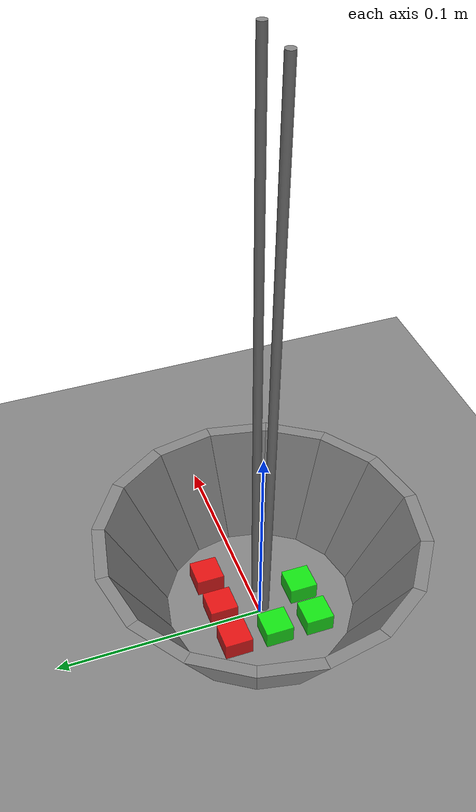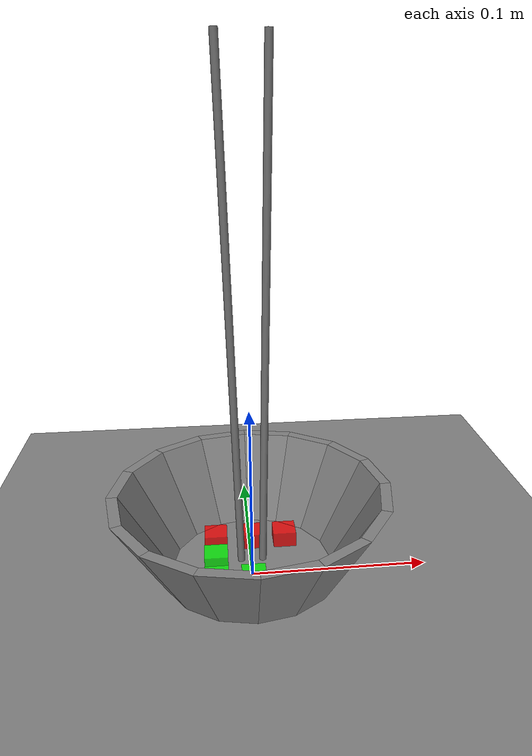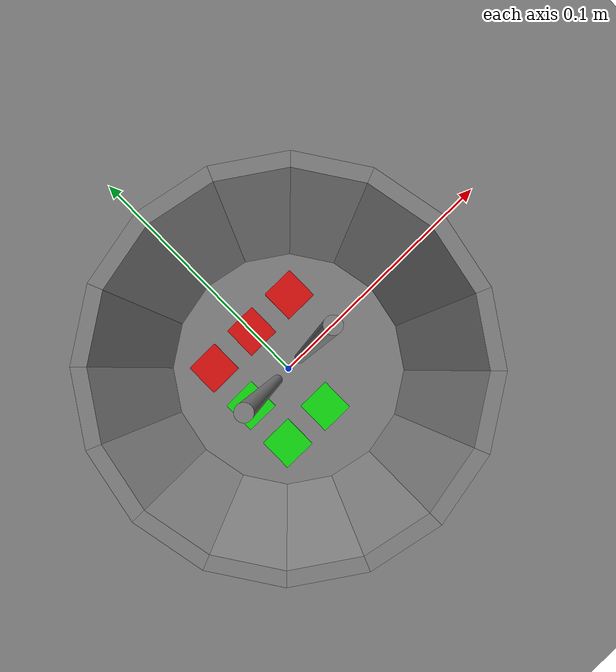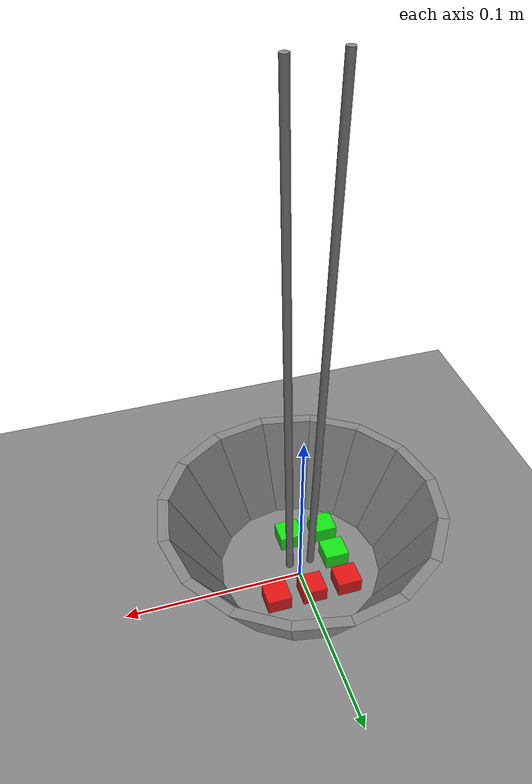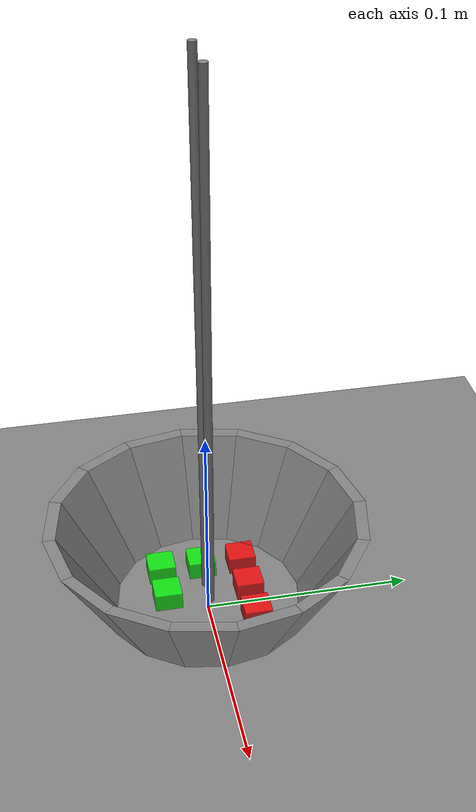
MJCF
<?xml version="1.0"?>
<mujoco model="stir-v2">
  <include file="header/header.xml" />
  <worldbody>
    <include file="worldbody/worldbody.xml" />
    <include file="tools/bowl.xml" />
    <include file="ingredients/ingredients.xml" />
  </worldbody>
  <include file="contact/contact.xml" />
  <include file="actuator/actuator.xml" />
</mujoco>

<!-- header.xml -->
<mujoco>
  <option timestep="0.0025" />
  <asset>
    <mesh file="../meshes/cooking_bowl_bottom.stl" name="cooking_bowl_bottom" />
    <mesh file="../meshes/cooking_bowl_fragment.stl" name="cooking_bowl_fragment" />
  </asset>
  <default>
    <joint armature="100.0" damping="300" limited="true" />
  </default>
</mujoco>

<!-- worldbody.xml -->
<mujoco>
  <light name="light0" directional="true" diffuse=".3 .3 .3" pos="-1 -1 1" dir="1 1 -1" />
  <light name="light1" directional="true" diffuse=".3 .3 .3" pos="1 -1 1" dir="-1 1 -1" />
  <light name="light2" directional="true" diffuse=".3 .3 .3" pos="0 1 1" dir="0 -1 -1" />
  <site name="world" pos="0 0 0" size="0.0001" />
  <geom name="floor" pos="0 0 0.008" size="1.0 1.0 0.00001" type="plane" condim="3" />
  <!-- refer to https://github.com/deepmind/mujoco/blob/main/test/engine/testdata/refsite.xml -->
  <body name="tools" pos="0 0 0.01">
    <joint name="joint_tool_position_x" type="slide" pos="0 0 0" axis="1 0 0" range="-10.0 10.0" />
    <joint name="joint_tool_position_y" type="slide" pos="0 0 0" axis="0 1 0" range="-10.0 10.0" />
    <joint name="joint_tool_position_z" type="slide" pos="0 0 0" axis="0 0 1" range="-10.0 10.0" />
    <joint type="ball" />
    <site name="site_tools" pos="0 0 0" size="0.0001" />
    <geom name="geom_tool1" type="cylinder" size="0.002" fromto="0.012 0 0.27 0.006 0 0" />
    <geom name="geom_tool2" type="cylinder" size="0.002" fromto="-0.012 0 0.27 -0.006 0 0" />
  </body>
</mujoco>

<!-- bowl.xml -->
<mujoco>
  <body name="bowl" pos="0 0 -0.006">
    <geom name="geom_bowl_fragment0" type="mesh" mesh="cooking_bowl_fragment" pos="0 0 0" euler="0 0 0.0" />
    <geom name="geom_bowl_fragment1" type="mesh" mesh="cooking_bowl_fragment" pos="0 0 0" euler="0 0 22.5" />
    <geom name="geom_bowl_fragment2" type="mesh" mesh="cooking_bowl_fragment" pos="0 0 0" euler="0 0 45.0" />
    <geom name="geom_bowl_fragment3" type="mesh" mesh="cooking_bowl_fragment" pos="0 0 0" euler="0 0 67.5" />
    <geom name="geom_bowl_fragment4" type="mesh" mesh="cooking_bowl_fragment" pos="0 0 0" euler="0 0 90.0" />
    <geom name="geom_bowl_fragment5" type="mesh" mesh="cooking_bowl_fragment" pos="0 0 0" euler="0 0 112.5" />
    <geom name="geom_bowl_fragment6" type="mesh" mesh="cooking_bowl_fragment" pos="0 0 0" euler="0 0 135.0" />
    <geom name="geom_bowl_fragment7" type="mesh" mesh="cooking_bowl_fragment" pos="0 0 0" euler="0 0 157.5" />
    <geom name="geom_bowl_fragment8" type="mesh" mesh="cooking_bowl_fragment" pos="0 0 0" euler="0 0 180.0" />
    <geom name="geom_bowl_fragment9" type="mesh" mesh="cooking_bowl_fragment" pos="0 0 0" euler="0 0 202.5" />
    <geom name="geom_bowl_fragment10" type="mesh" mesh="cooking_bowl_fragment" pos="0 0 0" euler="0 0 225.0" />
    <geom name="geom_bowl_fragment11" type="mesh" mesh="cooking_bowl_fragment" pos="0 0 0" euler="0 0 247.49999999999997" />
    <geom name="geom_bowl_fragment12" type="mesh" mesh="cooking_bowl_fragment" pos="0 0 0" euler="0 0 270.0" />
    <geom name="geom_bowl_fragment13" type="mesh" mesh="cooking_bowl_fragment" pos="0 0 0" euler="0 0 292.5" />
    <geom name="geom_bowl_fragment14" type="mesh" mesh="cooking_bowl_fragment" pos="0 0 0" euler="0 0 315.0" />
    <geom name="geom_bowl_fragment15" type="mesh" mesh="cooking_bowl_fragment" pos="0 0 0" euler="0 0 337.5" />
  </body>
</mujoco>

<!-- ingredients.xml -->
<mujoco>
  <body name="ingredient0" pos="0.0 0.02 0.01">
    <freejoint name="joint_ingredient0" />
    <geom name="geom_ingredient0" type="box" size="0.0065 0.0065 0.0065" rgba="1.0 0 0 0.8" />
  </body>
  <body name="ingredient1" pos="0.02 0.02 0.01">
    <freejoint name="joint_ingredient1" />
    <geom name="geom_ingredient1" type="box" size="0.0065 0.0065 0.0065" rgba="1.0 0.0 0 0.8" />
  </body>
  <body name="ingredient2" pos="0.0 0.02 0.01">
    <freejoint name="joint_ingredient2" />
    <geom name="geom_ingredient2" type="box" size="0.0065 0.0065 0.0065" rgba="1.0 0 0 0.8" />
  </body>
  <body name="ingredient3" pos="-0.02 0.02 0.01">
    <freejoint name="joint_ingredient3" />
    <geom name="geom_ingredient3" type="box" size="0.0065 0.0065 0.0065" rgba="1.0 0 0 0.8" />
  </body>
  <body name="ingredient4" pos="-0.02 -0.0 0.01">
    <freejoint name="joint_ingredient4" />
    <geom name="geom_ingredient4" type="box" size="0.0065 0.0065 0.0065" rgba="0 1.0 0 0.8" />
  </body>
  <body name="ingredient5" pos="-0.02 -0.02 0.01">
    <freejoint name="joint_ingredient5" />
    <geom name="geom_ingredient5" type="box" size="0.0065 0.0065 0.0065" rgba="0 1.0 0 0.8" />
  </body>
  <body name="ingredient6" pos="0.0 -0.02 0.01">
    <freejoint name="joint_ingredient6" />
    <geom name="geom_ingredient6" type="box" size="0.0065 0.0065 0.0065" rgba="0 1.0 0 0.8" />
  </body>
  <body name="ingredient7" pos="0.02 0.02 0.01">
    <freejoint name="joint_ingredient7" />
    <geom name="geom_ingredient7" type="box" size="0.0065 0.0065 0.0065" rgba="0 1.0 0 0.8" />
  </body>
</mujoco>

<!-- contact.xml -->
<mujoco>
  <contact>
    <pair name="contact_pair0" geom1="floor" geom2="geom_ingredient0" friction="1 1 0.005 0.1 0.1" />
    <pair name="contact_pair1" geom1="floor" geom2="geom_ingredient1" friction="1 1 0.005 0.1 0.1" />
    <pair name="contact_pair2" geom1="floor" geom2="geom_ingredient2" friction="1 1 0.005 0.1 0.1" />
    <pair name="contact_pair3" geom1="floor" geom2="geom_ingredient3" friction="1 1 0.005 0.1 0.1" />
    <pair name="contact_pair4" geom1="floor" geom2="geom_ingredient4" friction="1 1 0.005 0.1 0.1" />
    <pair name="contact_pair5" geom1="floor" geom2="geom_ingredient5" friction="1 1 0.005 0.1 0.1" />
    <pair name="contact_pair6" geom1="floor" geom2="geom_ingredient6" friction="1 1 0.005 0.1 0.1" />
    <pair name="contact_pair7" geom1="floor" geom2="geom_ingredient7" friction="1 1 0.005 0.1 0.1" />
  </contact>
</mujoco>

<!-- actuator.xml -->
<mujoco>
  <actuator>
    <position name="x" site="site_tools" refsite="world" gear="1 0 0 0 0 0" kp="80" />
    <position name="y" site="site_tools" refsite="world" gear="0 1 0 0 0 0" kp="80" />
    <position name="z" site="site_tools" refsite="world" gear="0 0 1 0 0 0" kp="80" />
    <position name="rx" site="site_tools" refsite="world" gear="0 0 0 1 0 0" kp="80" />
    <position name="ry" site="site_tools" refsite="world" gear="0 0 0 0 1 0" kp="80" />
    <position name="rz" site="site_tools" refsite="world" gear="0 0 0 0 0 1" kp="80" />
  </actuator>
</mujoco>
